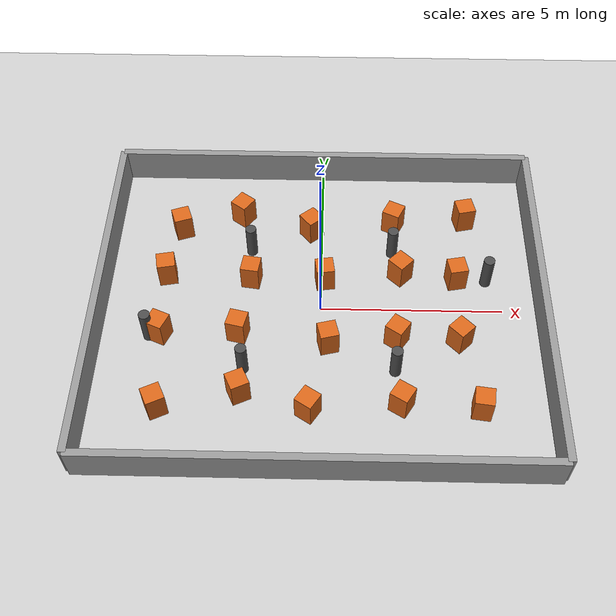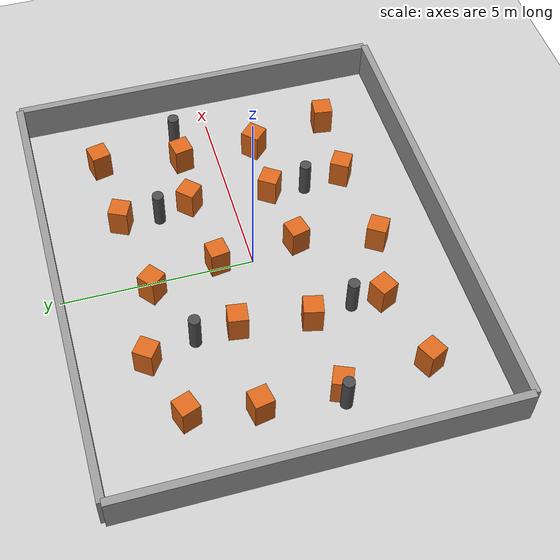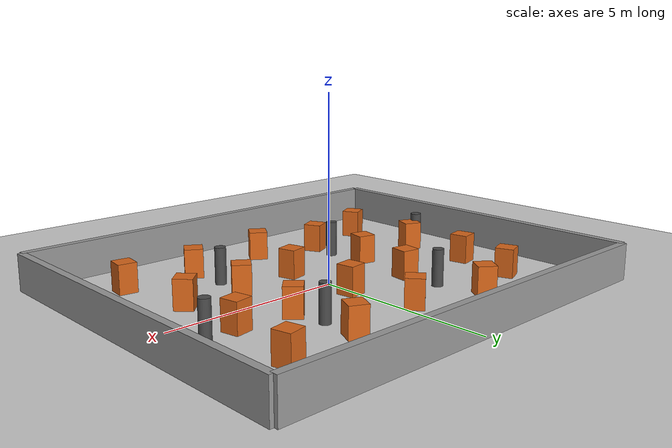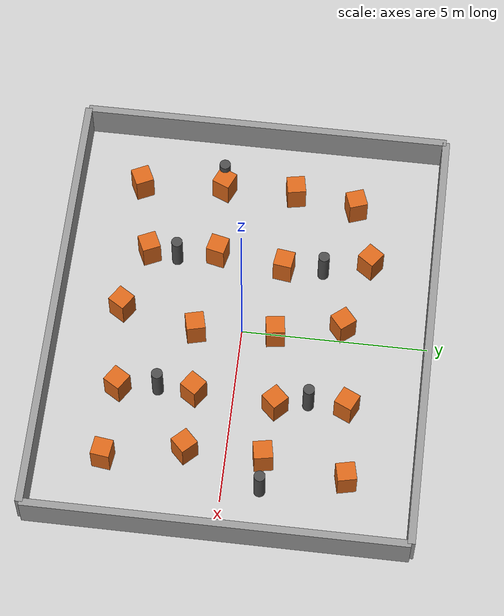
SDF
<?xml version="1.0"?>
<sdf version="1.6">
  <world name="obstacle_field">
    <include>
      <uri>model://ground_plane</uri>
    </include>
    <include>
      <uri>model://sun</uri>
    </include>
    <light name="world_light" type="directional">
      <pose>0 0 10 0 0 0</pose>
      <diffuse>0.8 0.8 0.8 1</diffuse>
      <specular>0.2 0.2 0.2 1</specular>
      <direction>0 0 -1</direction>
    </light>

    <model name="wall_north">
      <static>true</static>
      <link name="link">
        <collision name="collision">
          <geometry><box><size>12 0.2 1</size></box></geometry>
        </collision>
        <visual name="visual">
          <geometry><box><size>12 0.2 1</size></box></geometry>
          <material><ambient>0.6 0.6 0.6 1</ambient><diffuse>0.6 0.6 0.6 1</diffuse></material>
        </visual>
      </link>
      <pose>0 5 0.5 0 0 0.0</pose>
    </model>

    <model name="wall_south">
      <static>true</static>
      <link name="link">
        <collision name="collision">
          <geometry><box><size>12 0.2 1</size></box></geometry>
        </collision>
        <visual name="visual">
          <geometry><box><size>12 0.2 1</size></box></geometry>
          <material><ambient>0.6 0.6 0.6 1</ambient><diffuse>0.6 0.6 0.6 1</diffuse></material>
        </visual>
      </link>
      <pose>0 -5 0.5 0 0 0.0</pose>
    </model>

    <model name="wall_east">
      <static>true</static>
      <link name="link">
        <collision name="collision">
          <geometry><box><size>0.2 10 1</size></box></geometry>
        </collision>
        <visual name="visual">
          <geometry><box><size>0.2 10 1</size></box></geometry>
          <material><ambient>0.6 0.6 0.6 1</ambient><diffuse>0.6 0.6 0.6 1</diffuse></material>
        </visual>
      </link>
      <pose>6 0 0.5 0 0 0.0</pose>
    </model>

    <model name="wall_west">
      <static>true</static>
      <link name="link">
        <collision name="collision">
          <geometry><box><size>0.2 10 1</size></box></geometry>
        </collision>
        <visual name="visual">
          <geometry><box><size>0.2 10 1</size></box></geometry>
          <material><ambient>0.6 0.6 0.6 1</ambient><diffuse>0.6 0.6 0.6 1</diffuse></material>
        </visual>
      </link>
      <pose>-6 0 0.5 0 0 0.0</pose>
    </model>

    <model name="box_0">
      <static>true</static>
      <link name="link">
        <collision name="collision">
          <geometry><box><size>0.5 0.5 0.8</size></box></geometry>
        </collision>
        <visual name="visual">
          <geometry><box><size>0.5 0.5 0.8</size></box></geometry>
          <material><ambient>0.85 0.4 0.1 1</ambient><diffuse>0.85 0.4 0.1 1</diffuse></material>
        </visual>
      </link>
      <pose>-4.123317064616787 -3.2444055782528487 0.4 0 0 0.4528034191195611</pose>
    </model>

    <model name="box_1">
      <static>true</static>
      <link name="link">
        <collision name="collision">
          <geometry><box><size>0.5 0.5 0.8</size></box></geometry>
        </collision>
        <visual name="visual">
          <geometry><box><size>0.5 0.5 0.8</size></box></geometry>
          <material><ambient>0.85 0.4 0.1 1</ambient><diffuse>0.85 0.4 0.1 1</diffuse></material>
        </visual>
      </link>
      <pose>-4.29929459933272 -0.9748825969853175 0.4 0 0 -0.4029332492622433</pose>
    </model>

    <model name="box_2">
      <static>true</static>
      <link name="link">
        <collision name="collision">
          <geometry><box><size>0.5 0.5 0.8</size></box></geometry>
        </collision>
        <visual name="visual">
          <geometry><box><size>0.5 0.5 0.8</size></box></geometry>
          <material><ambient>0.85 0.4 0.1 1</ambient><diffuse>0.85 0.4 0.1 1</diffuse></material>
        </visual>
      </link>
      <pose>-4.309400752657705 1.0052050132325943 0.4 0 0 -1.3875130246740452</pose>
    </model>

    <model name="box_3">
      <static>true</static>
      <link name="link">
        <collision name="collision">
          <geometry><box><size>0.5 0.5 0.8</size></box></geometry>
        </collision>
        <visual name="visual">
          <geometry><box><size>0.5 0.5 0.8</size></box></geometry>
          <material><ambient>0.85 0.4 0.1 1</ambient><diffuse>0.85 0.4 0.1 1</diffuse></material>
        </visual>
      </link>
      <pose>-4.04644802143633 2.6988987965022333 0.4 0 0 -1.227860959968405</pose>
    </model>

    <model name="box_4">
      <static>true</static>
      <link name="link">
        <collision name="collision">
          <geometry><box><size>0.5 0.5 0.8</size></box></geometry>
        </collision>
        <visual name="visual">
          <geometry><box><size>0.5 0.5 0.8</size></box></geometry>
          <material><ambient>0.85 0.4 0.1 1</ambient><diffuse>0.85 0.4 0.1 1</diffuse></material>
        </visual>
      </link>
      <pose>-2.0528365676002402 -2.7712035127295733 0.4 0 0 -1.1285941165510631</pose>
    </model>

    <model name="box_5">
      <static>true</static>
      <link name="link">
        <collision name="collision">
          <geometry><box><size>0.5 0.5 0.8</size></box></geometry>
        </collision>
        <visual name="visual">
          <geometry><box><size>0.5 0.5 0.8</size></box></geometry>
          <material><ambient>0.85 0.4 0.1 1</ambient><diffuse>0.85 0.4 0.1 1</diffuse></material>
        </visual>
      </link>
      <pose>-2.19373272477509 -0.9107967443160875 0.4 0 0 1.3431268273710169</pose>
    </model>

    <model name="box_6">
      <static>true</static>
      <link name="link">
        <collision name="collision">
          <geometry><box><size>0.5 0.5 0.8</size></box></geometry>
        </collision>
        <visual name="visual">
          <geometry><box><size>0.5 0.5 0.8</size></box></geometry>
          <material><ambient>0.85 0.4 0.1 1</ambient><diffuse>0.85 0.4 0.1 1</diffuse></material>
        </visual>
      </link>
      <pose>-1.9460279359677508 0.9276763322555461 0.4 0 0 1.42876531677876</pose>
    </model>

    <model name="box_7">
      <static>true</static>
      <link name="link">
        <collision name="collision">
          <geometry><box><size>0.5 0.5 0.8</size></box></geometry>
        </collision>
        <visual name="visual">
          <geometry><box><size>0.5 0.5 0.8</size></box></geometry>
          <material><ambient>0.85 0.4 0.1 1</ambient><diffuse>0.85 0.4 0.1 1</diffuse></material>
        </visual>
      </link>
      <pose>-2.3173921235675707 3.2509279213340756 0.4 0 0 -0.6311721410049712</pose>
    </model>

    <model name="box_8">
      <static>true</static>
      <link name="link">
        <collision name="collision">
          <geometry><box><size>0.5 0.5 0.8</size></box></geometry>
        </collision>
        <visual name="visual">
          <geometry><box><size>0.5 0.5 0.8</size></box></geometry>
          <material><ambient>0.85 0.4 0.1 1</ambient><diffuse>0.85 0.4 0.1 1</diffuse></material>
        </visual>
      </link>
      <pose>-0.24902144164979373 -3.267545433345142 0.4 0 0 -0.5745545276941969</pose>
    </model>

    <model name="box_9">
      <static>true</static>
      <link name="link">
        <collision name="collision">
          <geometry><box><size>0.5 0.5 0.8</size></box></geometry>
        </collision>
        <visual name="visual">
          <geometry><box><size>0.5 0.5 0.8</size></box></geometry>
          <material><ambient>0.85 0.4 0.1 1</ambient><diffuse>0.85 0.4 0.1 1</diffuse></material>
        </visual>
      </link>
      <pose>0.22128845138402198 -1.2234915340532437 0.4 0 0 0.24480049098739887</pose>
    </model>

    <model name="box_10">
      <static>true</static>
      <link name="link">
        <collision name="collision">
          <geometry><box><size>0.5 0.5 0.8</size></box></geometry>
        </collision>
        <visual name="visual">
          <geometry><box><size>0.5 0.5 0.8</size></box></geometry>
          <material><ambient>0.85 0.4 0.1 1</ambient><diffuse>0.85 0.4 0.1 1</diffuse></material>
        </visual>
      </link>
      <pose>0.09723942824832882 0.9106782799080119 0.4 0 0 0.14323339712867345</pose>
    </model>

    <model name="box_11">
      <static>true</static>
      <link name="link">
        <collision name="collision">
          <geometry><box><size>0.5 0.5 0.8</size></box></geometry>
        </collision>
        <visual name="visual">
          <geometry><box><size>0.5 0.5 0.8</size></box></geometry>
          <material><ambient>0.85 0.4 0.1 1</ambient><diffuse>0.85 0.4 0.1 1</diffuse></material>
        </visual>
      </link>
      <pose>-0.30604771751867377 2.691720818976363 0.4 0 0 -0.8821238615420204</pose>
    </model>

    <model name="box_12">
      <static>true</static>
      <link name="link">
        <collision name="collision">
          <geometry><box><size>0.5 0.5 0.8</size></box></geometry>
        </collision>
        <visual name="visual">
          <geometry><box><size>0.5 0.5 0.8</size></box></geometry>
          <material><ambient>0.85 0.4 0.1 1</ambient><diffuse>0.85 0.4 0.1 1</diffuse></material>
        </visual>
      </link>
      <pose>2.12627998122725 -3.050685386031418 0.4 0 0 -0.5575584888696254</pose>
    </model>

    <model name="box_13">
      <static>true</static>
      <link name="link">
        <collision name="collision">
          <geometry><box><size>0.5 0.5 0.8</size></box></geometry>
        </collision>
        <visual name="visual">
          <geometry><box><size>0.5 0.5 0.8</size></box></geometry>
          <material><ambient>0.85 0.4 0.1 1</ambient><diffuse>0.85 0.4 0.1 1</diffuse></material>
        </visual>
      </link>
      <pose>2.059893304455347 -1.0327709365404574 0.4 0 0 -0.6006990094089529</pose>
    </model>

    <model name="box_14">
      <static>true</static>
      <link name="link">
        <collision name="collision">
          <geometry><box><size>0.5 0.5 0.8</size></box></geometry>
        </collision>
        <visual name="visual">
          <geometry><box><size>0.5 0.5 0.8</size></box></geometry>
          <material><ambient>0.85 0.4 0.1 1</ambient><diffuse>0.85 0.4 0.1 1</diffuse></material>
        </visual>
      </link>
      <pose>2.206065637065744 1.1392961036106999 0.4 0 0 -0.7677104678335414</pose>
    </model>

    <model name="box_15">
      <static>true</static>
      <link name="link">
        <collision name="collision">
          <geometry><box><size>0.5 0.5 0.8</size></box></geometry>
        </collision>
        <visual name="visual">
          <geometry><box><size>0.5 0.5 0.8</size></box></geometry>
          <material><ambient>0.85 0.4 0.1 1</ambient><diffuse>0.85 0.4 0.1 1</diffuse></material>
        </visual>
      </link>
      <pose>2.0520965971810696 3.017637552668016 0.4 0 0 1.1254124867202866</pose>
    </model>

    <model name="box_16">
      <static>true</static>
      <link name="link">
        <collision name="collision">
          <geometry><box><size>0.5 0.5 0.8</size></box></geometry>
        </collision>
        <visual name="visual">
          <geometry><box><size>0.5 0.5 0.8</size></box></geometry>
          <material><ambient>0.85 0.4 0.1 1</ambient><diffuse>0.85 0.4 0.1 1</diffuse></material>
        </visual>
      </link>
      <pose>4.1606117026074525 -3.1484435645768696 0.4 0 0 1.4405245424777462</pose>
    </model>

    <model name="box_17">
      <static>true</static>
      <link name="link">
        <collision name="collision">
          <geometry><box><size>0.5 0.5 0.8</size></box></geometry>
        </collision>
        <visual name="visual">
          <geometry><box><size>0.5 0.5 0.8</size></box></geometry>
          <material><ambient>0.85 0.4 0.1 1</ambient><diffuse>0.85 0.4 0.1 1</diffuse></material>
        </visual>
      </link>
      <pose>3.7326460447784733 -1.057314024750341 0.4 0 0 0.7714227886957481</pose>
    </model>

    <model name="box_18">
      <static>true</static>
      <link name="link">
        <collision name="collision">
          <geometry><box><size>0.5 0.5 0.8</size></box></geometry>
        </collision>
        <visual name="visual">
          <geometry><box><size>0.5 0.5 0.8</size></box></geometry>
          <material><ambient>0.85 0.4 0.1 1</ambient><diffuse>0.85 0.4 0.1 1</diffuse></material>
        </visual>
      </link>
      <pose>3.7563891742623534 0.992274170333064 0.4 0 0 -1.3823782288576871</pose>
    </model>

    <model name="box_19">
      <static>true</static>
      <link name="link">
        <collision name="collision">
          <geometry><box><size>0.5 0.5 0.8</size></box></geometry>
        </collision>
        <visual name="visual">
          <geometry><box><size>0.5 0.5 0.8</size></box></geometry>
          <material><ambient>0.85 0.4 0.1 1</ambient><diffuse>0.85 0.4 0.1 1</diffuse></material>
        </visual>
      </link>
      <pose>4.117751099574076 3.185199606348969 0.4 0 0 0.219077820832152</pose>
    </model>

    <model name="pillar_0">
      <static>true</static>
      <link name="link">
        <collision name="collision">
          <geometry><cylinder><radius>0.15</radius><length>1</length></cylinder></geometry>
        </collision>
        <visual name="visual">
          <geometry><cylinder><radius>0.15</radius><length>1</length></cylinder></geometry>
          <material><ambient>0.3 0.3 0.3 1</ambient><diffuse>0.3 0.3 0.3 1</diffuse></material>
        </visual>
      </link>
      <pose>2 2 0.5 0 0 0</pose>
    </model>

    <model name="pillar_1">
      <static>true</static>
      <link name="link">
        <collision name="collision">
          <geometry><cylinder><radius>0.15</radius><length>1</length></cylinder></geometry>
        </collision>
        <visual name="visual">
          <geometry><cylinder><radius>0.15</radius><length>1</length></cylinder></geometry>
          <material><ambient>0.3 0.3 0.3 1</ambient><diffuse>0.3 0.3 0.3 1</diffuse></material>
        </visual>
      </link>
      <pose>-2 2 0.5 0 0 0</pose>
    </model>

    <model name="pillar_2">
      <static>true</static>
      <link name="link">
        <collision name="collision">
          <geometry><cylinder><radius>0.15</radius><length>1</length></cylinder></geometry>
        </collision>
        <visual name="visual">
          <geometry><cylinder><radius>0.15</radius><length>1</length></cylinder></geometry>
          <material><ambient>0.3 0.3 0.3 1</ambient><diffuse>0.3 0.3 0.3 1</diffuse></material>
        </visual>
      </link>
      <pose>2 -2 0.5 0 0 0</pose>
    </model>

    <model name="pillar_3">
      <static>true</static>
      <link name="link">
        <collision name="collision">
          <geometry><cylinder><radius>0.15</radius><length>1</length></cylinder></geometry>
        </collision>
        <visual name="visual">
          <geometry><cylinder><radius>0.15</radius><length>1</length></cylinder></geometry>
          <material><ambient>0.3 0.3 0.3 1</ambient><diffuse>0.3 0.3 0.3 1</diffuse></material>
        </visual>
      </link>
      <pose>-2 -2 0.5 0 0 0</pose>
    </model>

    <model name="pillar_4">
      <static>true</static>
      <link name="link">
        <collision name="collision">
          <geometry><cylinder><radius>0.15</radius><length>1</length></cylinder></geometry>
        </collision>
        <visual name="visual">
          <geometry><cylinder><radius>0.15</radius><length>1</length></cylinder></geometry>
          <material><ambient>0.3 0.3 0.3 1</ambient><diffuse>0.3 0.3 0.3 1</diffuse></material>
        </visual>
      </link>
      <pose>4.6 1 0.5 0 0 0</pose>
    </model>

    <model name="pillar_5">
      <static>true</static>
      <link name="link">
        <collision name="collision">
          <geometry><cylinder><radius>0.15</radius><length>1</length></cylinder></geometry>
        </collision>
        <visual name="visual">
          <geometry><cylinder><radius>0.15</radius><length>1</length></cylinder></geometry>
          <material><ambient>0.3 0.3 0.3 1</ambient><diffuse>0.3 0.3 0.3 1</diffuse></material>
        </visual>
      </link>
      <pose>-4.6 -1 0.5 0 0 0</pose>
    </model>
  </world>
</sdf>
